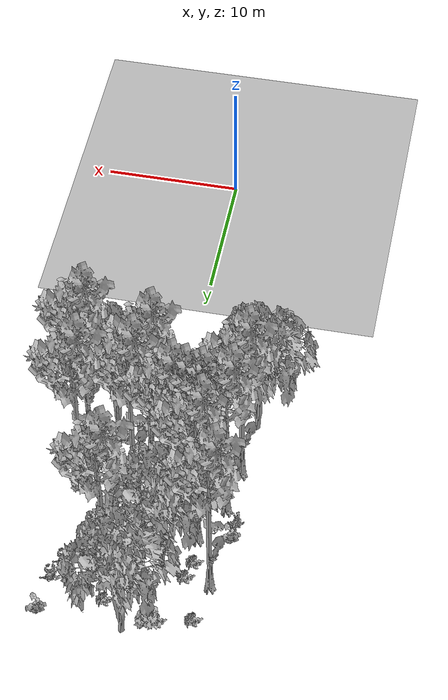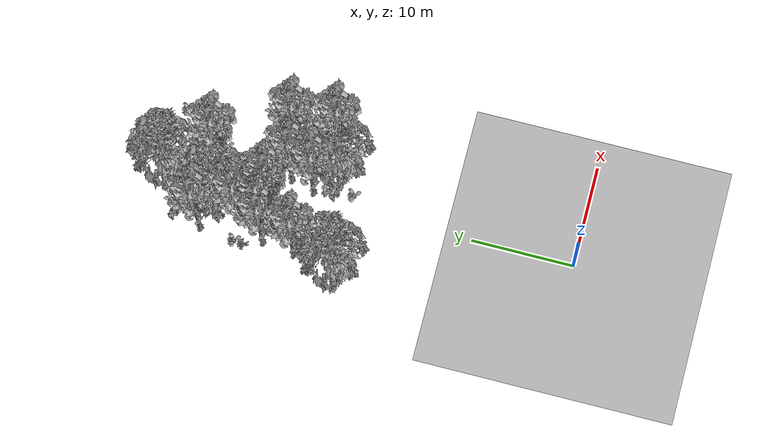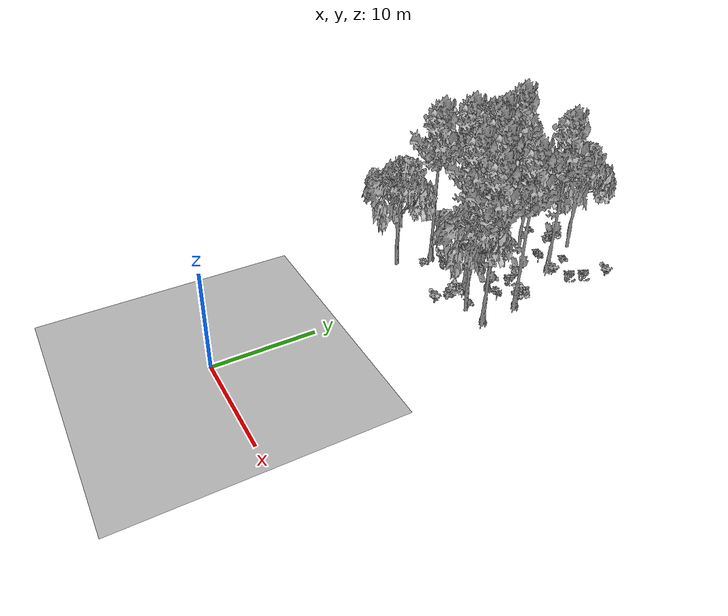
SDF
<sdf version="1.7">
 <world name="default">
  <model name="ground_plane">
   <static>1</static>
   <link name="link">
    <collision name="collision">
     <pose>-50 0 0 0 -0 0</pose>
     <geometry><plane><normal>0 0 1</normal><size>80 80</size></plane></geometry>
     <surface><contact><ode><min_depth>0.01</min_depth><max_vel>0</max_vel></ode></contact></surface>
    </collision>
    <visual name="grass">
     <cast_shadows>0</cast_shadows>
     <geometry>
      <mesh>
       <scale>0.46714285714285714 0.46714285714285714 0.1</scale>
       <uri>file://grass_plane/meshes/grass_plane.dae</uri>
      </mesh>
     </geometry>
    </visual>
   </link>
  </model>
  <model name="Tree 38">
   <static>1</static>
   <pose>-3.549059881941865 32.049422621800375 0 1.57079 -0 0</pose>
   <link name="link">
    <collision name="collision">
     <geometry><mesh><scale>3.5 5 3.5</scale><uri>model://tree_9/meshes/tree_9.obj</uri></mesh></geometry>
    </collision>
    <visual name="visual">
     <geometry><mesh><scale>3.5 5 3.5</scale><uri>model://tree_9/meshes/tree_9.obj</uri></mesh></geometry>
    </visual>
   </link>
  </model>
  <model name="Tree 49">
   <static>1</static>
   <pose>-2.8289390896741438 30.313094445126282 0 1.57079 -0 0</pose>
   <link name="link">
    <collision name="collision">
     <geometry><mesh><scale>3.5 5 3.5</scale><uri>model://tree_9/meshes/tree_9.obj</uri></mesh></geometry>
    </collision>
    <visual name="visual">
     <geometry><mesh><scale>3.5 5 3.5</scale><uri>model://tree_9/meshes/tree_9.obj</uri></mesh></geometry>
    </visual>
   </link>
  </model>
  <model name="Tree 96">
   <static>1</static>
   <pose>-2.1225642697294234 29.955770647457015 0 1.57079 -0 0</pose>
   <link name="link">
    <collision name="collision">
     <geometry><mesh><scale>3.5 5 3.5</scale><uri>model://tree_9/meshes/tree_9.obj</uri></mesh></geometry>
    </collision>
    <visual name="visual">
     <geometry><mesh><scale>3.5 5 3.5</scale><uri>model://tree_9/meshes/tree_9.obj</uri></mesh></geometry>
    </visual>
   </link>
  </model>
  <model name="Tree 106">
   <static>1</static>
   <pose>-1.726291210583426 34.67930447523574 0 1.57079 -0 0</pose>
   <link name="link">
    <collision name="collision">
     <geometry><mesh><scale>3.5 5 3.5</scale><uri>model://tree_2/meshes/tree_2.obj</uri></mesh></geometry>
    </collision>
    <visual name="visual">
     <geometry><mesh><scale>3.5 5 3.5</scale><uri>model://tree_2/meshes/tree_2.obj</uri></mesh></geometry>
    </visual>
   </link>
  </model>
  <model name="Tree 136">
   <static>1</static>
   <pose>3.675721203554396 24.09614499485265 0 1.57079 -0 0</pose>
   <link name="link">
    <collision name="collision">
     <geometry><mesh><scale>3.5 5 3.5</scale><uri>model://tree_2/meshes/tree_2.obj</uri></mesh></geometry>
    </collision>
    <visual name="visual">
     <geometry><mesh><scale>3.5 5 3.5</scale><uri>model://tree_2/meshes/tree_2.obj</uri></mesh></geometry>
    </visual>
   </link>
  </model>
  <model name="Tree 157">
   <static>1</static>
   <pose>-1.2228583262788746 29.696955574223438 0 1.57079 -0 0</pose>
   <link name="link">
    <collision name="collision">
     <geometry><mesh><scale>3.5 5 3.5</scale><uri>model://tree_9/meshes/tree_9.obj</uri></mesh></geometry>
    </collision>
    <visual name="visual">
     <geometry><mesh><scale>3.5 5 3.5</scale><uri>model://tree_9/meshes/tree_9.obj</uri></mesh></geometry>
    </visual>
   </link>
  </model>
  <model name="Tree 191">
   <static>1</static>
   <pose>1.6434871792069785 28.239907382046155 0 1.57079 -0 0</pose>
   <link name="link">
    <collision name="collision">
     <geometry><mesh><scale>3.5 5 3.5</scale><uri>model://tree_9/meshes/tree_9.obj</uri></mesh></geometry>
    </collision>
    <visual name="visual">
     <geometry><mesh><scale>3.5 5 3.5</scale><uri>model://tree_9/meshes/tree_9.obj</uri></mesh></geometry>
    </visual>
   </link>
  </model>
  <model name="Tree 207">
   <static>1</static>
   <pose>5.176242180985156 28.840342510918916 0 1.57079 -0 0</pose>
   <link name="link">
    <collision name="collision">
     <geometry><mesh><scale>3.5 5 3.5</scale><uri>model://tree_9/meshes/tree_9.obj</uri></mesh></geometry>
    </collision>
    <visual name="visual">
     <geometry><mesh><scale>3.5 5 3.5</scale><uri>model://tree_9/meshes/tree_9.obj</uri></mesh></geometry>
    </visual>
   </link>
  </model>
  <model name="Tree 211">
   <static>1</static>
   <pose>-5.439668374786727 26.18754976562292 0 1.57079 -0 0</pose>
   <link name="link">
    <collision name="collision">
     <geometry><mesh><scale>3.5 5 3.5</scale><uri>model://tree_9/meshes/tree_9.obj</uri></mesh></geometry>
    </collision>
    <visual name="visual">
     <geometry><mesh><scale>3.5 5 3.5</scale><uri>model://tree_9/meshes/tree_9.obj</uri></mesh></geometry>
    </visual>
   </link>
  </model>
  <model name="Tree 357">
   <static>1</static>
   <pose>-5.91380625711983 22.24253748768532 0 1.57079 -0 0</pose>
   <link name="link">
    <collision name="collision">
     <geometry><mesh><scale>3.5 5 3.5</scale><uri>model://tree_2/meshes/tree_2.obj</uri></mesh></geometry>
    </collision>
    <visual name="visual">
     <geometry><mesh><scale>3.5 5 3.5</scale><uri>model://tree_2/meshes/tree_2.obj</uri></mesh></geometry>
    </visual>
   </link>
  </model>
  <model name="Tree 377">
   <static>1</static>
   <pose>-4.998470134446457 29.355626673261042 0 1.57079 -0 0</pose>
   <link name="link">
    <collision name="collision">
     <geometry><mesh><scale>3.5 5 3.5</scale><uri>model://tree_9/meshes/tree_9.obj</uri></mesh></geometry>
    </collision>
    <visual name="visual">
     <geometry><mesh><scale>3.5 5 3.5</scale><uri>model://tree_9/meshes/tree_9.obj</uri></mesh></geometry>
    </visual>
   </link>
  </model>
  <model name="Tree 498">
   <static>1</static>
   <pose>-0.19764786278773983 39.946014502143086 0 1.57079 -0 0</pose>
   <link name="link">
    <collision name="collision">
     <geometry><mesh><scale>3.5 5 3.5</scale><uri>model://tree_2/meshes/tree_2.obj</uri></mesh></geometry>
    </collision>
    <visual name="visual">
     <geometry><mesh><scale>3.5 5 3.5</scale><uri>model://tree_2/meshes/tree_2.obj</uri></mesh></geometry>
    </visual>
   </link>
  </model>
  <model name="Tree 536">
   <static>1</static>
   <pose>-3.1698046182937176 29.992070773294586 0 1.57079 -0 0</pose>
   <link name="link">
    <collision name="collision">
     <geometry><mesh><scale>3.5 5 3.5</scale><uri>model://tree_9/meshes/tree_9.obj</uri></mesh></geometry>
    </collision>
    <visual name="visual">
     <geometry><mesh><scale>3.5 5 3.5</scale><uri>model://tree_9/meshes/tree_9.obj</uri></mesh></geometry>
    </visual>
   </link>
  </model>
  <model name="Tree 591">
   <static>1</static>
   <pose>5.690677438752466 24.698590754557813 0 1.57079 -0 0</pose>
   <link name="link">
    <collision name="collision">
     <geometry><mesh><scale>3.5 5 3.5</scale><uri>model://tree_9/meshes/tree_9.obj</uri></mesh></geometry>
    </collision>
    <visual name="visual">
     <geometry><mesh><scale>3.5 5 3.5</scale><uri>model://tree_9/meshes/tree_9.obj</uri></mesh></geometry>
    </visual>
   </link>
  </model>
  <model name="Tree 601">
   <static>1</static>
   <pose>0.9603127108085943 25.905074880607074 0 1.57079 -0 0</pose>
   <link name="link">
    <collision name="collision">
     <geometry><mesh><scale>3.5 5 3.5</scale><uri>model://tree_9/meshes/tree_9.obj</uri></mesh></geometry>
    </collision>
    <visual name="visual">
     <geometry><mesh><scale>3.5 5 3.5</scale><uri>model://tree_9/meshes/tree_9.obj</uri></mesh></geometry>
    </visual>
   </link>
  </model>
  <model name="Tree 602">
   <static>1</static>
   <pose>-5.078313740134206 35.551389397651946 0 1.57079 -0 0</pose>
   <link name="link">
    <collision name="collision">
     <geometry><mesh><scale>3.5 5 3.5</scale><uri>model://tree_9/meshes/tree_9.obj</uri></mesh></geometry>
    </collision>
    <visual name="visual">
     <geometry><mesh><scale>3.5 5 3.5</scale><uri>model://tree_9/meshes/tree_9.obj</uri></mesh></geometry>
    </visual>
   </link>
  </model>
  <model name="Tree 605">
   <static>1</static>
   <pose>1.9273249914391215 35.60876960153608 0 1.57079 -0 0</pose>
   <link name="link">
    <collision name="collision">
     <geometry><mesh><scale>3.5 5 3.5</scale><uri>model://tree_9/meshes/tree_9.obj</uri></mesh></geometry>
    </collision>
    <visual name="visual">
     <geometry><mesh><scale>3.5 5 3.5</scale><uri>model://tree_9/meshes/tree_9.obj</uri></mesh></geometry>
    </visual>
   </link>
  </model>
  <model name="Bush 6">
   <static>1</static>
   <pose>-3.345876902289959 35.23992277027375 0 1.57079 -0 0</pose>
   <link name="link">
    <collision name="collision">
     <geometry><mesh><scale>2 2 2</scale><uri>model://bush_2/meshes/bush_2.obj</uri></mesh></geometry>
     <surface><contact><collide_without_contact>false</collide_without_contact></contact></surface>
    </collision>
    <visual name="visual">
     <geometry><mesh><scale>2 2 2</scale><uri>model://bush_2/meshes/bush_2.obj</uri></mesh></geometry>
    </visual>
   </link>
  </model>
  <model name="Bush 9">
   <static>1</static>
   <pose>-2.2064649707896535 38.87030067103582 0 1.57079 -0 0</pose>
   <link name="link">
    <collision name="collision">
     <geometry><mesh><scale>2 2 2</scale><uri>model://bush_2/meshes/bush_2.obj</uri></mesh></geometry>
     <surface><contact><collide_without_contact>false</collide_without_contact></contact></surface>
    </collision>
    <visual name="visual">
     <geometry><mesh><scale>2 2 2</scale><uri>model://bush_2/meshes/bush_2.obj</uri></mesh></geometry>
    </visual>
   </link>
  </model>
  <model name="Bush 31">
   <static>1</static>
   <pose>1.4360858379474237 24.23804493958184 0 1.57079 -0 0</pose>
   <link name="link">
    <collision name="collision">
     <geometry><mesh><scale>2 2 2</scale><uri>model://bush_1/meshes/bush_1.obj</uri></mesh></geometry>
     <surface><contact><collide_without_contact>false</collide_without_contact></contact></surface>
    </collision>
    <visual name="visual">
     <geometry><mesh><scale>2 2 2</scale><uri>model://bush_1/meshes/bush_1.obj</uri></mesh></geometry>
    </visual>
   </link>
  </model>
  <model name="Bush 78">
   <static>1</static>
   <pose>-3.781304344421642 29.133353719133595 0 1.57079 -0 0</pose>
   <link name="link">
    <collision name="collision">
     <geometry><mesh><scale>2 2 2</scale><uri>model://bush_2/meshes/bush_2.obj</uri></mesh></geometry>
     <surface><contact><collide_without_contact>false</collide_without_contact></contact></surface>
    </collision>
    <visual name="visual">
     <geometry><mesh><scale>2 2 2</scale><uri>model://bush_2/meshes/bush_2.obj</uri></mesh></geometry>
    </visual>
   </link>
  </model>
  <model name="Bush 110">
   <static>1</static>
   <pose>-2.8932246654516547 25.96933471636055 0 1.57079 -0 0</pose>
   <link name="link">
    <collision name="collision">
     <geometry><mesh><scale>2 2 2</scale><uri>model://bush_4/meshes/bush_4.obj</uri></mesh></geometry>
     <surface><contact><collide_without_contact>false</collide_without_contact></contact></surface>
    </collision>
    <visual name="visual">
     <geometry><mesh><scale>2 2 2</scale><uri>model://bush_4/meshes/bush_4.obj</uri></mesh></geometry>
    </visual>
   </link>
  </model>
  <model name="Bush 177">
   <static>1</static>
   <pose>0.7907920973441307 35.3192773528297 0 1.57079 -0 0</pose>
   <link name="link">
    <collision name="collision">
     <geometry><mesh><scale>2 2 2</scale><uri>model://bush_5/meshes/bush_5.obj</uri></mesh></geometry>
     <surface><contact><collide_without_contact>false</collide_without_contact></contact></surface>
    </collision>
    <visual name="visual">
     <geometry><mesh><scale>2 2 2</scale><uri>model://bush_5/meshes/bush_5.obj</uri></mesh></geometry>
    </visual>
   </link>
  </model>
  <model name="Bush 199">
   <static>1</static>
   <pose>-3.6912194104755613 34.0102249189796 0 1.57079 -0 0</pose>
   <link name="link">
    <collision name="collision">
     <geometry><mesh><scale>2 2 2</scale><uri>model://bush_2/meshes/bush_2.obj</uri></mesh></geometry>
     <surface><contact><collide_without_contact>false</collide_without_contact></contact></surface>
    </collision>
    <visual name="visual">
     <geometry><mesh><scale>2 2 2</scale><uri>model://bush_2/meshes/bush_2.obj</uri></mesh></geometry>
    </visual>
   </link>
  </model>
  <model name="Bush 216">
   <static>1</static>
   <pose>2.479919530812971 30.013480240234898 0 1.57079 -0 0</pose>
   <link name="link">
    <collision name="collision">
     <geometry><mesh><scale>2 2 2</scale><uri>model://bush_4/meshes/bush_4.obj</uri></mesh></geometry>
     <surface><contact><collide_without_contact>false</collide_without_contact></contact></surface>
    </collision>
    <visual name="visual">
     <geometry><mesh><scale>2 2 2</scale><uri>model://bush_4/meshes/bush_4.obj</uri></mesh></geometry>
    </visual>
   </link>
  </model>
  <model name="Bush 234">
   <static>1</static>
   <pose>3.0885176676831207 35.184921130127236 0 1.57079 -0 0</pose>
   <link name="link">
    <collision name="collision">
     <geometry><mesh><scale>2 2 2</scale><uri>model://bush_0/meshes/bush_0.obj</uri></mesh></geometry>
     <surface><contact><collide_without_contact>false</collide_without_contact></contact></surface>
    </collision>
    <visual name="visual">
     <geometry><mesh><scale>2 2 2</scale><uri>model://bush_0/meshes/bush_0.obj</uri></mesh></geometry>
    </visual>
   </link>
  </model>
  <model name="Bush 258">
   <static>1</static>
   <pose>-2.0227228522923397 27.72738357320796 0 1.57079 -0 0</pose>
   <link name="link">
    <collision name="collision">
     <geometry><mesh><scale>2 2 2</scale><uri>model://bush_2/meshes/bush_2.obj</uri></mesh></geometry>
     <surface><contact><collide_without_contact>false</collide_without_contact></contact></surface>
    </collision>
    <visual name="visual">
     <geometry><mesh><scale>2 2 2</scale><uri>model://bush_2/meshes/bush_2.obj</uri></mesh></geometry>
    </visual>
   </link>
  </model>
  <model name="Bush 270">
   <static>1</static>
   <pose>5.747166845817901 39.75760063367214 0 1.57079 -0 0</pose>
   <link name="link">
    <collision name="collision">
     <geometry><mesh><scale>2 2 2</scale><uri>model://bush_0/meshes/bush_0.obj</uri></mesh></geometry>
     <surface><contact><collide_without_contact>false</collide_without_contact></contact></surface>
    </collision>
    <visual name="visual">
     <geometry><mesh><scale>2 2 2</scale><uri>model://bush_0/meshes/bush_0.obj</uri></mesh></geometry>
    </visual>
   </link>
  </model>
  <model name="Bush 273">
   <static>1</static>
   <pose>-4.504393916191624 38.35483934667876 0 1.57079 -0 0</pose>
   <link name="link">
    <collision name="collision">
     <geometry><mesh><scale>2 2 2</scale><uri>model://bush_2/meshes/bush_2.obj</uri></mesh></geometry>
     <surface><contact><collide_without_contact>false</collide_without_contact></contact></surface>
    </collision>
    <visual name="visual">
     <geometry><mesh><scale>2 2 2</scale><uri>model://bush_2/meshes/bush_2.obj</uri></mesh></geometry>
    </visual>
   </link>
  </model>
  <model name="Bush 302">
   <static>1</static>
   <pose>-5.929456090084976 31.206360307890705 0 1.57079 -0 0</pose>
   <link name="link">
    <collision name="collision">
     <geometry><mesh><scale>2 2 2</scale><uri>model://bush_5/meshes/bush_5.obj</uri></mesh></geometry>
     <surface><contact><collide_without_contact>false</collide_without_contact></contact></surface>
    </collision>
    <visual name="visual">
     <geometry><mesh><scale>2 2 2</scale><uri>model://bush_5/meshes/bush_5.obj</uri></mesh></geometry>
    </visual>
   </link>
  </model>
  <model name="Bush 355">
   <static>1</static>
   <pose>1.061672698709586 23.89807701443185 0 1.57079 -0 0</pose>
   <link name="link">
    <collision name="collision">
     <geometry><mesh><scale>2 2 2</scale><uri>model://bush_2/meshes/bush_2.obj</uri></mesh></geometry>
     <surface><contact><collide_without_contact>false</collide_without_contact></contact></surface>
    </collision>
    <visual name="visual">
     <geometry><mesh><scale>2 2 2</scale><uri>model://bush_2/meshes/bush_2.obj</uri></mesh></geometry>
    </visual>
   </link>
  </model>
  <model name="Bush 356">
   <static>1</static>
   <pose>-5.6496280694167424 32.10255841443967 0 1.57079 -0 0</pose>
   <link name="link">
    <collision name="collision">
     <geometry><mesh><scale>2 2 2</scale><uri>model://bush_0/meshes/bush_0.obj</uri></mesh></geometry>
     <surface><contact><collide_without_contact>false</collide_without_contact></contact></surface>
    </collision>
    <visual name="visual">
     <geometry><mesh><scale>2 2 2</scale><uri>model://bush_0/meshes/bush_0.obj</uri></mesh></geometry>
    </visual>
   </link>
  </model>
  <model name="Bush 357">
   <static>1</static>
   <pose>-0.5943933088803703 36.27647045837148 0 1.57079 -0 0</pose>
   <link name="link">
    <collision name="collision">
     <geometry><mesh><scale>2 2 2</scale><uri>model://bush_2/meshes/bush_2.obj</uri></mesh></geometry>
     <surface><contact><collide_without_contact>false</collide_without_contact></contact></surface>
    </collision>
    <visual name="visual">
     <geometry><mesh><scale>2 2 2</scale><uri>model://bush_2/meshes/bush_2.obj</uri></mesh></geometry>
    </visual>
   </link>
  </model>
  <model name="Bush 360">
   <static>1</static>
   <pose>4.87919414015748 29.527518907989588 0 1.57079 -0 0</pose>
   <link name="link">
    <collision name="collision">
     <geometry><mesh><scale>2 2 2</scale><uri>model://bush_1/meshes/bush_1.obj</uri></mesh></geometry>
     <surface><contact><collide_without_contact>false</collide_without_contact></contact></surface>
    </collision>
    <visual name="visual">
     <geometry><mesh><scale>2 2 2</scale><uri>model://bush_1/meshes/bush_1.obj</uri></mesh></geometry>
    </visual>
   </link>
  </model>
  <model name="Bush 374">
   <static>1</static>
   <pose>-1.7457883734569535 39.15343744602224 0 1.57079 -0 0</pose>
   <link name="link">
    <collision name="collision">
     <geometry><mesh><scale>2 2 2</scale><uri>model://bush_1/meshes/bush_1.obj</uri></mesh></geometry>
     <surface><contact><collide_without_contact>false</collide_without_contact></contact></surface>
    </collision>
    <visual name="visual">
     <geometry><mesh><scale>2 2 2</scale><uri>model://bush_1/meshes/bush_1.obj</uri></mesh></geometry>
    </visual>
   </link>
  </model>
  <model name="Bush 405">
   <static>1</static>
   <pose>1.5381771958108956 37.91900816777273 0 1.57079 -0 0</pose>
   <link name="link">
    <collision name="collision">
     <geometry><mesh><scale>2 2 2</scale><uri>model://bush_2/meshes/bush_2.obj</uri></mesh></geometry>
     <surface><contact><collide_without_contact>false</collide_without_contact></contact></surface>
    </collision>
    <visual name="visual">
     <geometry><mesh><scale>2 2 2</scale><uri>model://bush_2/meshes/bush_2.obj</uri></mesh></geometry>
    </visual>
   </link>
  </model>
  <model name="Bush 428">
   <static>1</static>
   <pose>4.739040232000875 35.695599430645046 0 1.57079 -0 0</pose>
   <link name="link">
    <collision name="collision">
     <geometry><mesh><scale>2 2 2</scale><uri>model://bush_4/meshes/bush_4.obj</uri></mesh></geometry>
     <surface><contact><collide_without_contact>false</collide_without_contact></contact></surface>
    </collision>
    <visual name="visual">
     <geometry><mesh><scale>2 2 2</scale><uri>model://bush_4/meshes/bush_4.obj</uri></mesh></geometry>
    </visual>
   </link>
  </model>
  <model name="Bush 441">
   <static>1</static>
   <pose>-4.722365956327472 24.812630659701057 0 1.57079 -0 0</pose>
   <link name="link">
    <collision name="collision">
     <geometry><mesh><scale>2 2 2</scale><uri>model://bush_2/meshes/bush_2.obj</uri></mesh></geometry>
     <surface><contact><collide_without_contact>false</collide_without_contact></contact></surface>
    </collision>
    <visual name="visual">
     <geometry><mesh><scale>2 2 2</scale><uri>model://bush_2/meshes/bush_2.obj</uri></mesh></geometry>
    </visual>
   </link>
  </model>
  <model name="Bush 456">
   <static>1</static>
   <pose>0.9169140719196136 29.484499434018147 0 1.57079 -0 0</pose>
   <link name="link">
    <collision name="collision">
     <geometry><mesh><scale>2 2 2</scale><uri>model://bush_2/meshes/bush_2.obj</uri></mesh></geometry>
     <surface><contact><collide_without_contact>false</collide_without_contact></contact></surface>
    </collision>
    <visual name="visual">
     <geometry><mesh><scale>2 2 2</scale><uri>model://bush_2/meshes/bush_2.obj</uri></mesh></geometry>
    </visual>
   </link>
  </model>
  <model name="Bush 507">
   <static>1</static>
   <pose>1.4165918077779196 22.123249228883274 0 1.57079 -0 0</pose>
   <link name="link">
    <collision name="collision">
     <geometry><mesh><scale>2 2 2</scale><uri>model://bush_0/meshes/bush_0.obj</uri></mesh></geometry>
     <surface><contact><collide_without_contact>false</collide_without_contact></contact></surface>
    </collision>
    <visual name="visual">
     <geometry><mesh><scale>2 2 2</scale><uri>model://bush_0/meshes/bush_0.obj</uri></mesh></geometry>
    </visual>
   </link>
  </model>
  <model name="Bush 509">
   <static>1</static>
   <pose>1.8799165124828505 31.451887824603972 0 1.57079 -0 0</pose>
   <link name="link">
    <collision name="collision">
     <geometry><mesh><scale>2 2 2</scale><uri>model://bush_0/meshes/bush_0.obj</uri></mesh></geometry>
     <surface><contact><collide_without_contact>false</collide_without_contact></contact></surface>
    </collision>
    <visual name="visual">
     <geometry><mesh><scale>2 2 2</scale><uri>model://bush_0/meshes/bush_0.obj</uri></mesh></geometry>
    </visual>
   </link>
  </model>
  <model name="Bush 522">
   <static>1</static>
   <pose>-4.149363316473433 26.55933941795962 0 1.57079 -0 0</pose>
   <link name="link">
    <collision name="collision">
     <geometry><mesh><scale>2 2 2</scale><uri>model://bush_0/meshes/bush_0.obj</uri></mesh></geometry>
     <surface><contact><collide_without_contact>false</collide_without_contact></contact></surface>
    </collision>
    <visual name="visual">
     <geometry><mesh><scale>2 2 2</scale><uri>model://bush_0/meshes/bush_0.obj</uri></mesh></geometry>
    </visual>
   </link>
  </model>
  <model name="Bush 577">
   <static>1</static>
   <pose>3.06555600554897 24.91209545262234 0 1.57079 -0 0</pose>
   <link name="link">
    <collision name="collision">
     <geometry><mesh><scale>2 2 2</scale><uri>model://bush_2/meshes/bush_2.obj</uri></mesh></geometry>
     <surface><contact><collide_without_contact>false</collide_without_contact></contact></surface>
    </collision>
    <visual name="visual">
     <geometry><mesh><scale>2 2 2</scale><uri>model://bush_2/meshes/bush_2.obj</uri></mesh></geometry>
    </visual>
   </link>
  </model>
  <model name="Bush 611">
   <static>1</static>
   <pose>5.276703262063627 37.061322762135276 0 1.57079 -0 0</pose>
   <link name="link">
    <collision name="collision">
     <geometry><mesh><scale>2 2 2</scale><uri>model://bush_4/meshes/bush_4.obj</uri></mesh></geometry>
     <surface><contact><collide_without_contact>false</collide_without_contact></contact></surface>
    </collision>
    <visual name="visual">
     <geometry><mesh><scale>2 2 2</scale><uri>model://bush_4/meshes/bush_4.obj</uri></mesh></geometry>
    </visual>
   </link>
  </model>
  <model name="Bush 612">
   <static>1</static>
   <pose>3.908063350139166 27.62279124642626 0 1.57079 -0 0</pose>
   <link name="link">
    <collision name="collision">
     <geometry><mesh><scale>2 2 2</scale><uri>model://bush_5/meshes/bush_5.obj</uri></mesh></geometry>
     <surface><contact><collide_without_contact>false</collide_without_contact></contact></surface>
    </collision>
    <visual name="visual">
     <geometry><mesh><scale>2 2 2</scale><uri>model://bush_5/meshes/bush_5.obj</uri></mesh></geometry>
    </visual>
   </link>
  </model>
 </world>
</sdf>
